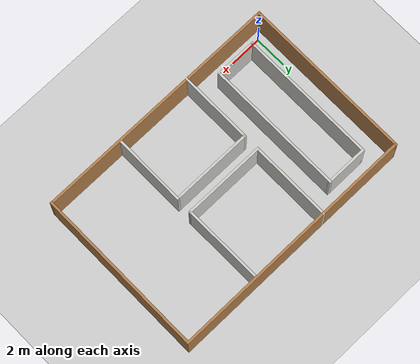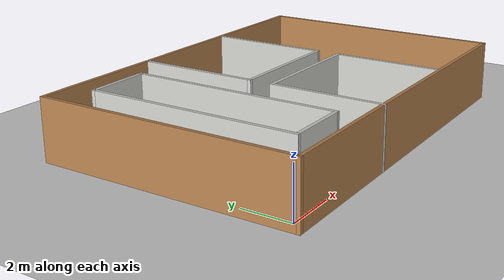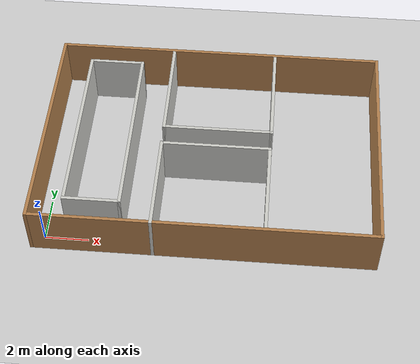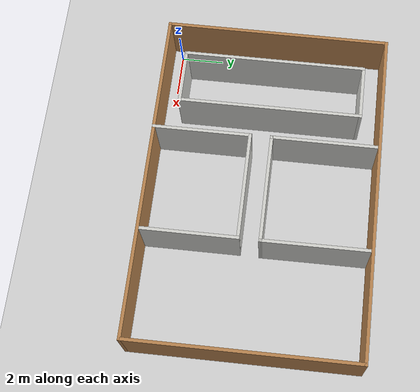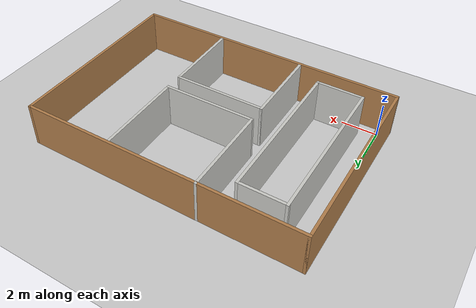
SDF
<sdf version="1.6">
 <world name="default">
  <light name="sun" type="directional">
   <pose>0 0 10 0 -0 0</pose>
   <diffuse>0.8 0.8 0.8 1</diffuse>
   <specular>0.2 0.2 0.2 1</specular>
   <attenuation>
    <range>1000</range>
    <constant>0.9</constant>
    <linear>0.01</linear>
    <quadratic>0.001</quadratic>
   </attenuation>
   <direction>-0.5 0.1 -0.9</direction>
  </light>
  <model name="ground_plane">
   <static>1</static>
   <link name="link">
    <collision name="collision">
     <geometry><plane><normal>0 0 1</normal><size>100 100</size></plane></geometry>
     <surface>
      <contact><collide_bitmask>65535</collide_bitmask></contact>
      <friction><ode><mu>100</mu><mu2>50</mu2></ode></friction>
     </surface>
    </collision>
    <visual name="visual">
     <cast_shadows>0</cast_shadows>
     <geometry><plane><normal>0 0 1</normal><size>100 100</size></plane></geometry>
     <material>
      <script><uri>file://media/materials/scripts/gazebo.material</uri><name>Gazebo/Grey</name></script>
     </material>
    </visual>
   </link>
  </model>
  <gravity>0 0 -9.8</gravity>
  <magnetic_field>6e-06 2.3e-05 -4.2e-05</magnetic_field>
  <atmosphere type="adiabatic"/>
  <physics name="default_physics" default="0" type="ode">
   <max_step_size>0.001</max_step_size>
   <real_time_factor>1</real_time_factor>
   <real_time_update_rate>1000</real_time_update_rate>
  </physics>
  <scene><ambient>0.4 0.4 0.4 1</ambient><background>0.7 0.7 0.7 1</background><shadows>1</shadows></scene>
  <audio><device>default</device></audio>
  <spherical_coordinates>
   <surface_model>EARTH_WGS84</surface_model>
   <latitude_deg>0</latitude_deg>
   <longitude_deg>0</longitude_deg>
   <elevation>0</elevation>
   <heading_deg>0</heading_deg>
  </spherical_coordinates>
  <model name="house_1007">
   <pose>7.25 4.75 0 0 -0 0</pose>
   <link name="Wall_10">
    <collision name="Wall_10_Collision">
     <geometry><box><size>8.65 0.15 2.5</size></box></geometry>
     <pose>0 0 1.25 0 -0 0</pose>
    </collision>
    <visual name="Wall_10_Visual">
     <pose>0 0 1.25 0 -0 0</pose>
     <geometry><box><size>8.65 0.15 2.5</size></box></geometry>
     <material>
      <script><uri>file://media/materials/scripts/gazebo.material</uri><name>Gazebo/CeilingTiled</name></script>
      <ambient>1 1 1 1</ambient>
     </material>
     <meta><layer>0</layer></meta>
    </visual>
    <pose>-6.25 -0 0 0 -0 -1.5708</pose>
   </link>
   <link name="Wall_11">
    <collision name="Wall_11_Collision">
     <geometry><box><size>2.65 0.15 2.5</size></box></geometry>
     <pose>0 0 1.25 0 -0 0</pose>
    </collision>
    <visual name="Wall_11_Visual">
     <pose>0 0 1.25 0 -0 0</pose>
     <geometry><box><size>2.65 0.15 2.5</size></box></geometry>
     <material>
      <script><uri>file://media/materials/scripts/gazebo.material</uri><name>Gazebo/CeilingTiled</name></script>
      <ambient>1 1 1 1</ambient>
     </material>
     <meta><layer>0</layer></meta>
    </visual>
    <pose>-5 -4.25 0 0 -0 0</pose>
   </link>
   <link name="Wall_12">
    <collision name="Wall_12_Collision">
     <geometry><box><size>8.65 0.15 2.5</size></box></geometry>
     <pose>0 0 1.25 0 -0 0</pose>
    </collision>
    <visual name="Wall_12_Visual">
     <pose>0 0 1.25 0 -0 0</pose>
     <geometry><box><size>8.65 0.15 2.5</size></box></geometry>
     <material>
      <script><uri>file://media/materials/scripts/gazebo.material</uri><name>Gazebo/CeilingTiled</name></script>
      <ambient>1 1 1 1</ambient>
     </material>
     <meta><layer>0</layer></meta>
    </visual>
    <pose>-3.75 -0 0 0 -0 1.5708</pose>
   </link>
   <link name="Wall_17">
    <collision name="Wall_17_Collision">
     <geometry><box><size>4.65 0.15 2.5</size></box></geometry>
     <pose>0 0 1.25 0 -0 0</pose>
    </collision>
    <visual name="Wall_17_Visual">
     <pose>0 0 1.25 0 -0 0</pose>
     <geometry><box><size>4.65 0.15 2.5</size></box></geometry>
     <material>
      <script><uri>file://media/materials/scripts/gazebo.material</uri><name>Gazebo/CeilingTiled</name></script>
      <ambient>1 1 1 1</ambient>
     </material>
     <meta><layer>0</layer></meta>
    </visual>
    <pose>-2.25 -3 0 0 -0 1.5708</pose>
   </link>
   <link name="Wall_18">
    <collision name="Wall_18_Collision">
     <geometry><box><size>5.15 0.15 2.5</size></box></geometry>
     <pose>0 0 1.25 0 -0 0</pose>
    </collision>
    <visual name="Wall_18_Visual">
     <pose>0 0 1.25 0 -0 0</pose>
     <geometry><box><size>5.15 0.15 2.5</size></box></geometry>
     <material>
      <script><uri>file://media/materials/scripts/gazebo.material</uri><name>Gazebo/CeilingTiled</name></script>
      <ambient>1 1 1 1</ambient>
     </material>
     <meta><layer>0</layer></meta>
    </visual>
    <pose>0.25 -0.75 0 0 -0 0</pose>
   </link>
   <link name="Wall_20">
    <collision name="Wall_20_Collision">
     <geometry><box><size>5.172 0.15 2.5</size></box></geometry>
     <pose>0 0 1.25 0 -0 0</pose>
    </collision>
    <visual name="Wall_20_Visual">
     <pose>0 0 1.25 0 -0 0</pose>
     <geometry><box><size>5.172 0.15 2.5</size></box></geometry>
     <material>
      <script><uri>file://media/materials/scripts/gazebo.material</uri><name>Gazebo/CeilingTiled</name></script>
      <ambient>1 1 1 1</ambient>
     </material>
     <meta><layer>0</layer></meta>
    </visual>
    <pose>0.261 0.25 0 0 -0 0</pose>
   </link>
   <link name="Wall_22">
    <collision name="Wall_22_Collision">
     <geometry><box><size>4.5 0.15 2.5</size></box></geometry>
     <pose>0 0 1.25 0 -0 0</pose>
    </collision>
    <visual name="Wall_22_Visual">
     <pose>0 0 1.25 0 -0 0</pose>
     <geometry><box><size>4.5 0.15 2.5</size></box></geometry>
     <material>
      <script><uri>file://media/materials/scripts/gazebo.material</uri><name>Gazebo/CeilingTiled</name></script>
      <ambient>1 1 1 1</ambient>
     </material>
     <meta><layer>0</layer></meta>
    </visual>
    <pose>2.75 -2.925 0 0 -0 -1.5708</pose>
   </link>
   <link name="Wall_26">
    <collision name="Wall_26_Collision">
     <geometry><box><size>5.00005 0.15 2.5</size></box></geometry>
     <pose>0 0 1.25 0 -0 0</pose>
    </collision>
    <visual name="Wall_26_Visual">
     <pose>0 0 1.25 0 -0 0</pose>
     <geometry><box><size>5.00005 0.15 2.5</size></box></geometry>
     <material>
      <script><uri>file://media/materials/scripts/gazebo.material</uri><name>Gazebo/CeilingTiled</name></script>
      <ambient>1 1 1 1</ambient>
     </material>
     <meta><layer>0</layer></meta>
    </visual>
    <pose>2.761 2.675 0 0 -0 1.57533</pose>
   </link>
   <link name="Wall_3">
    <collision name="Wall_3_Collision">
     <geometry><box><size>10.65 0.15 2.5</size></box></geometry>
     <pose>0 0 1.25 0 -0 0</pose>
    </collision>
    <visual name="Wall_3_Visual">
     <pose>0 0 1.25 0 -0 0</pose>
     <geometry><box><size>10.65 0.15 2.5</size></box></geometry>
     <material>
      <script><uri>file://media/materials/scripts/gazebo.material</uri><name>Gazebo/Wood</name></script>
      <ambient>1 1 1 1</ambient>
     </material>
     <meta><layer>0</layer></meta>
    </visual>
    <pose>-7.75 -0 0 0 -0 1.5708</pose>
   </link>
   <link name="Wall_32">
    <collision name="Wall_32_Collision">
     <geometry><box><size>2.65 0.15 2.5</size></box></geometry>
     <pose>0 0 1.25 0 -0 0</pose>
    </collision>
    <visual name="Wall_32_Visual">
     <pose>0 0 1.25 0 -0 0</pose>
     <geometry><box><size>2.65 0.15 2.5</size></box></geometry>
     <material>
      <script><uri>file://media/materials/scripts/gazebo.material</uri><name>Gazebo/CeilingTiled</name></script>
      <ambient>1 1 1 1</ambient>
     </material>
     <meta><layer>0</layer></meta>
    </visual>
    <pose>-5 4.25 0 0 -0 0</pose>
   </link>
   <link name="Wall_34">
    <collision name="Wall_34_Collision">
     <geometry><box><size>5.15 0.15 2.5</size></box></geometry>
     <pose>0 0 1.25 0 -0 0</pose>
    </collision>
    <visual name="Wall_34_Visual">
     <pose>0 0 1.25 0 -0 0</pose>
     <geometry><box><size>5.15 0.15 2.5</size></box></geometry>
     <material>
      <script><uri>file://media/materials/scripts/gazebo.material</uri><name>Gazebo/CeilingTiled</name></script>
      <ambient>1 1 1 1</ambient>
     </material>
     <meta><layer>0</layer></meta>
    </visual>
    <pose>-2.25 2.75 0 0 -0 1.5708</pose>
   </link>
   <link name="Wall_6">
    <collision name="Wall_6_Collision">
     <geometry><box><size>15.65 0.15 2.5</size></box></geometry>
     <pose>0 0 1.25 0 -0 0</pose>
    </collision>
    <visual name="Wall_6_Visual">
     <pose>0 0 1.25 0 -0 0</pose>
     <geometry><box><size>15.65 0.15 2.5</size></box></geometry>
     <material>
      <script><uri>file://media/materials/scripts/gazebo.material</uri><name>Gazebo/Wood</name></script>
      <ambient>1 1 1 1</ambient>
     </material>
     <meta><layer>0</layer></meta>
    </visual>
    <pose>-0 5.25 0 0 -0 0</pose>
   </link>
   <link name="Wall_7">
    <collision name="Wall_7_Collision">
     <geometry><box><size>10.65 0.15 2.5</size></box></geometry>
     <pose>0 0 1.25 0 -0 0</pose>
    </collision>
    <visual name="Wall_7_Visual">
     <pose>0 0 1.25 0 -0 0</pose>
     <geometry><box><size>10.65 0.15 2.5</size></box></geometry>
     <material>
      <script><uri>file://media/materials/scripts/gazebo.material</uri><name>Gazebo/Wood</name></script>
      <ambient>1 1 1 1</ambient>
     </material>
     <meta><layer>0</layer></meta>
    </visual>
    <pose>7.75 -0 0 0 -0 -1.5708</pose>
   </link>
   <link name="Wall_8">
    <collision name="Wall_8_Collision">
     <geometry><box><size>15.65 0.15 2.5</size></box></geometry>
     <pose>0 0 1.25 0 -0 0</pose>
    </collision>
    <visual name="Wall_8_Visual">
     <pose>0 0 1.25 0 -0 0</pose>
     <geometry><box><size>15.65 0.15 2.5</size></box></geometry>
     <material>
      <script><uri>file://media/materials/scripts/gazebo.material</uri><name>Gazebo/Wood</name></script>
      <ambient>1 1 1 1</ambient>
     </material>
     <meta><layer>0</layer></meta>
    </visual>
    <pose>-0 -5.25 0 0 -0 3.14159</pose>
   </link>
   <static>1</static>
  </model>
 </world>
</sdf>
